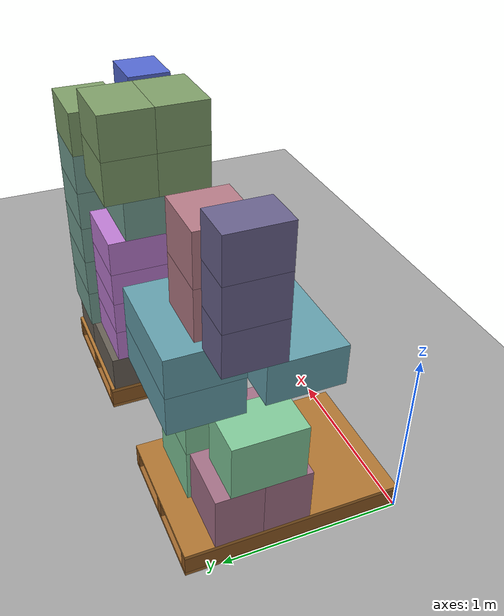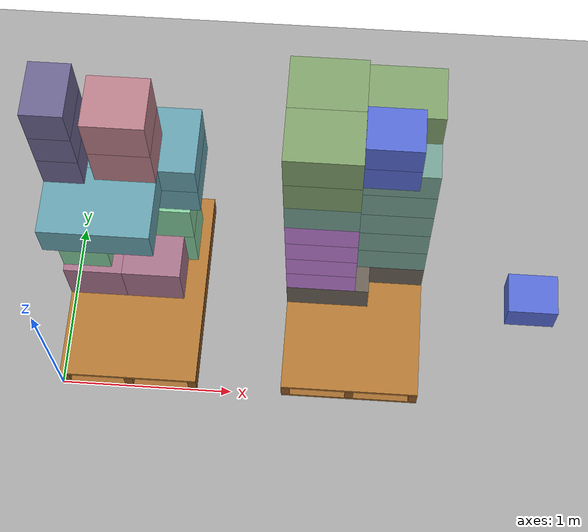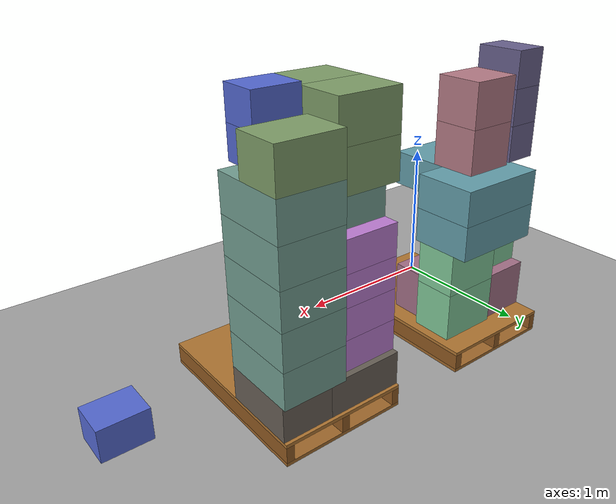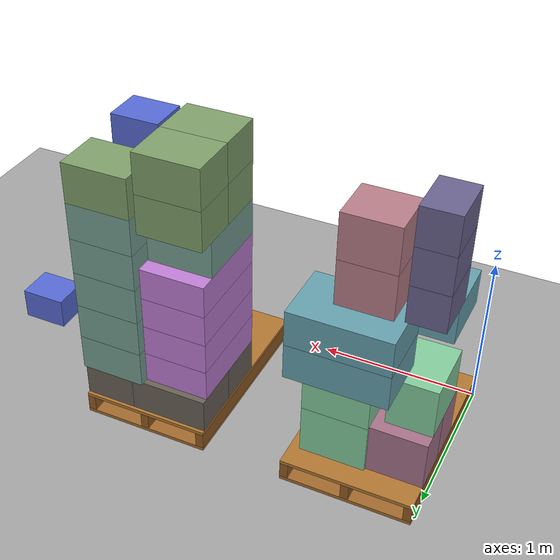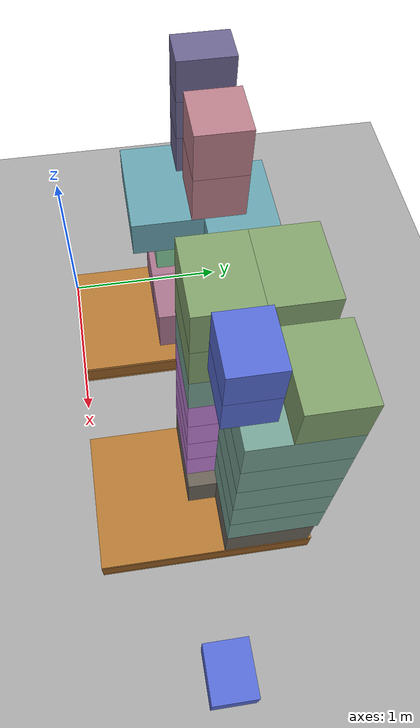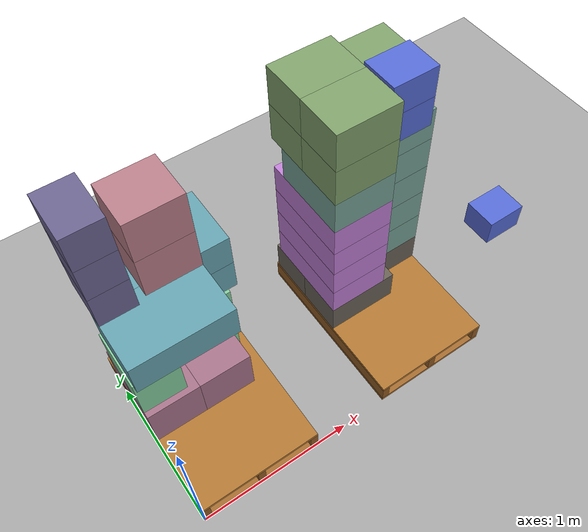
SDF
<sdf version="1.10">
 <world name="pallet_towers">
  <model name="ground_plane">
   <static>true</static>
   <link name="link">
    <collision name="collision">
     <geometry><plane><normal>0 0 1</normal><size>30 30</size></plane></geometry>
     <surface>
      <friction><ode><mu>0.55</mu><mu2>0.55</mu2></ode></friction>
      <bounce><restitution_coefficient>0</restitution_coefficient><threshold>100000</threshold></bounce>
      <contact><ode><kp>1000000</kp><kd>100</kd><max_vel>1</max_vel><min_depth>0.0005</min_depth></ode></contact>
     </surface>
    </collision>
    <visual name="visual">
     <geometry><plane><normal>0 0 1</normal><size>30 30</size></plane></geometry>
     <material><ambient>0.65 0.65 0.65 1</ambient><diffuse>0.65 0.65 0.65 1</diffuse></material>
    </visual>
   </link>
  </model>
  <model name="pallet_01_P01">
   <static>false</static>
   <pose>0.4 0.6 0.002 0 0 0</pose>
   <allow_auto_disable>false</allow_auto_disable>
   <link name="body">
    <inertial>
     <pose>0 0 0.072 0 0 0</pose>
     <mass>25</mass>
     <inertia>
      <ixx>3.07216082</ixx>
      <ixy>0</ixy>
      <ixz>0</ixz>
      <iyy>1.70896776</iyy>
      <iyz>0</iyz>
      <izz>4.63680694</izz>
     </inertia>
    </inertial>
    <collision name="bottom_deck_collision">
     <pose>0 0 0.011 0 0 0</pose>
     <geometry><box><size>0.8 1.2 0.022</size></box></geometry>
     <surface>
      <friction><ode><mu>0.55</mu><mu2>0.55</mu2></ode></friction>
      <bounce><restitution_coefficient>0</restitution_coefficient><threshold>100000</threshold></bounce>
      <contact><ode><kp>1000000</kp><kd>100</kd><max_vel>1</max_vel><min_depth>0.0005</min_depth></ode></contact>
     </surface>
    </collision>
    <visual name="bottom_deck_visual">
     <pose>0 0 0.011 0 0 0</pose>
     <geometry><box><size>0.8 1.2 0.022</size></box></geometry>
     <material>
      <ambient>0.46 0.28 0.10 1</ambient>
      <diffuse>0.64 0.42 0.18 1</diffuse>
      <specular>0.03 0.03 0.03 1</specular>
     </material>
    </visual>
    <collision name="left_stringer_collision">
     <pose>-0.375 0 0.072 0 0 0</pose>
     <geometry><box><size>0.05 1.2 0.1</size></box></geometry>
     <surface>
      <friction><ode><mu>0.55</mu><mu2>0.55</mu2></ode></friction>
      <bounce><restitution_coefficient>0</restitution_coefficient><threshold>100000</threshold></bounce>
      <contact><ode><kp>1000000</kp><kd>100</kd><max_vel>1</max_vel><min_depth>0.0005</min_depth></ode></contact>
     </surface>
    </collision>
    <visual name="left_stringer_visual">
     <pose>-0.375 0 0.072 0 0 0</pose>
     <geometry><box><size>0.05 1.2 0.1</size></box></geometry>
     <material>
      <ambient>0.42 0.25 0.09 1</ambient>
      <diffuse>0.58 0.36 0.14 1</diffuse>
      <specular>0.03 0.03 0.03 1</specular>
     </material>
    </visual>
    <collision name="centre_stringer_collision">
     <pose>0 0 0.072 0 0 0</pose>
     <geometry><box><size>0.05 1.2 0.1</size></box></geometry>
     <surface>
      <friction><ode><mu>0.55</mu><mu2>0.55</mu2></ode></friction>
      <bounce><restitution_coefficient>0</restitution_coefficient><threshold>100000</threshold></bounce>
      <contact><ode><kp>1000000</kp><kd>100</kd><max_vel>1</max_vel><min_depth>0.0005</min_depth></ode></contact>
     </surface>
    </collision>
    <visual name="centre_stringer_visual">
     <pose>0 0 0.072 0 0 0</pose>
     <geometry><box><size>0.05 1.2 0.1</size></box></geometry>
     <material>
      <ambient>0.42 0.25 0.09 1</ambient>
      <diffuse>0.58 0.36 0.14 1</diffuse>
      <specular>0.03 0.03 0.03 1</specular>
     </material>
    </visual>
    <collision name="right_stringer_collision">
     <pose>0.375 0 0.072 0 0 0</pose>
     <geometry><box><size>0.05 1.2 0.1</size></box></geometry>
     <surface>
      <friction><ode><mu>0.55</mu><mu2>0.55</mu2></ode></friction>
      <bounce><restitution_coefficient>0</restitution_coefficient><threshold>100000</threshold></bounce>
      <contact><ode><kp>1000000</kp><kd>100</kd><max_vel>1</max_vel><min_depth>0.0005</min_depth></ode></contact>
     </surface>
    </collision>
    <visual name="right_stringer_visual">
     <pose>0.375 0 0.072 0 0 0</pose>
     <geometry><box><size>0.05 1.2 0.1</size></box></geometry>
     <material>
      <ambient>0.42 0.25 0.09 1</ambient>
      <diffuse>0.58 0.36 0.14 1</diffuse>
      <specular>0.03 0.03 0.03 1</specular>
     </material>
    </visual>
    <collision name="top_deck_collision">
     <pose>0 0 0.133 0 0 0</pose>
     <geometry><box><size>0.8 1.2 0.022</size></box></geometry>
     <surface>
      <friction><ode><mu>0.55</mu><mu2>0.55</mu2></ode></friction>
      <bounce><restitution_coefficient>0</restitution_coefficient><threshold>100000</threshold></bounce>
      <contact><ode><kp>1000000</kp><kd>100</kd><max_vel>1</max_vel><min_depth>0.0005</min_depth></ode></contact>
     </surface>
    </collision>
    <visual name="top_deck_visual">
     <pose>0 0 0.133 0 0 0</pose>
     <geometry><box><size>0.8 1.2 0.022</size></box></geometry>
     <material>
      <ambient>0.50 0.31 0.11 1</ambient>
      <diffuse>0.70 0.47 0.20 1</diffuse>
      <specular>0.03 0.03 0.03 1</specular>
     </material>
    </visual>
   </link>
  </model>
  <model name="box_p01_0005_WINE_005_WINE">
   <static>false</static>
   <pose>0.17 0.65 0.306 0 0 0</pose>
   <link name="body">
    <inertial>
     <mass>18</mass>
     <inertia><ixx>0.255</ixx><ixy>0</ixy><ixz>0</ixz><iyy>0.327</iyy><iyz>0</iyz><izz>0.2748</izz></inertia>
    </inertial>
    <collision name="collision">
     <geometry><box><size>0.34 0.26 0.32</size></box></geometry>
     <surface>
      <friction><ode><mu>0.55</mu><mu2>0.55</mu2></ode></friction>
      <bounce><restitution_coefficient>0</restitution_coefficient><threshold>100000</threshold></bounce>
      <contact><ode><kp>1000000</kp><kd>100</kd><max_vel>1</max_vel><min_depth>0.0005</min_depth></ode></contact>
     </surface>
    </collision>
    <visual name="visual">
     <geometry><box><size>0.34 0.26 0.32</size></box></geometry>
     <material>
      <ambient>0.654901961 0.450980392 0.541176471 1</ambient>
      <diffuse>0.654901961 0.450980392 0.541176471 1</diffuse>
      <specular>0.05 0.05 0.05 1</specular>
     </material>
    </visual>
   </link>
  </model>
  <model name="box_p01_0006_WINE_006_WINE">
   <static>false</static>
   <pose>0.51 0.65 0.306 0 0 0</pose>
   <link name="body">
    <inertial>
     <mass>18</mass>
     <inertia><ixx>0.255</ixx><ixy>0</ixy><ixz>0</ixz><iyy>0.327</iyy><iyz>0</iyz><izz>0.2748</izz></inertia>
    </inertial>
    <collision name="collision">
     <geometry><box><size>0.34 0.26 0.32</size></box></geometry>
     <surface>
      <friction><ode><mu>0.55</mu><mu2>0.55</mu2></ode></friction>
      <bounce><restitution_coefficient>0</restitution_coefficient><threshold>100000</threshold></bounce>
      <contact><ode><kp>1000000</kp><kd>100</kd><max_vel>1</max_vel><min_depth>0.0005</min_depth></ode></contact>
     </surface>
    </collision>
    <visual name="visual">
     <geometry><box><size>0.34 0.26 0.32</size></box></geometry>
     <material>
      <ambient>0.654901961 0.450980392 0.541176471 1</ambient>
      <diffuse>0.654901961 0.450980392 0.541176471 1</diffuse>
      <specular>0.05 0.05 0.05 1</specular>
     </material>
    </visual>
   </link>
  </model>
  <model name="box_p01_0007_WINE_007_WINE">
   <static>false</static>
   <pose>0.17 0.91 0.306 0 0 0</pose>
   <link name="body">
    <inertial>
     <mass>18</mass>
     <inertia><ixx>0.255</ixx><ixy>0</ixy><ixz>0</ixz><iyy>0.327</iyy><iyz>0</iyz><izz>0.2748</izz></inertia>
    </inertial>
    <collision name="collision">
     <geometry><box><size>0.34 0.26 0.32</size></box></geometry>
     <surface>
      <friction><ode><mu>0.55</mu><mu2>0.55</mu2></ode></friction>
      <bounce><restitution_coefficient>0</restitution_coefficient><threshold>100000</threshold></bounce>
      <contact><ode><kp>1000000</kp><kd>100</kd><max_vel>1</max_vel><min_depth>0.0005</min_depth></ode></contact>
     </surface>
    </collision>
    <visual name="visual">
     <geometry><box><size>0.34 0.26 0.32</size></box></geometry>
     <material>
      <ambient>0.654901961 0.450980392 0.541176471 1</ambient>
      <diffuse>0.654901961 0.450980392 0.541176471 1</diffuse>
      <specular>0.05 0.05 0.05 1</specular>
     </material>
    </visual>
   </link>
  </model>
  <model name="box_p01_0008_DETERG_001_DETERG">
   <static>false</static>
   <pose>0.54 0.92 0.306 0 0 0</pose>
   <link name="body">
    <inertial>
     <mass>7</mass>
     <inertia>
      <ixx>0.105466667</ixx>
      <ixy>0</ixy>
      <ixz>0</ixz>
      <iyy>0.153066667</iyy>
      <iyz>0</iyz>
      <izz>0.139066667</izz>
     </inertia>
    </inertial>
    <collision name="collision">
     <geometry><box><size>0.4 0.28 0.32</size></box></geometry>
     <surface>
      <friction><ode><mu>0.55</mu><mu2>0.55</mu2></ode></friction>
      <bounce><restitution_coefficient>0</restitution_coefficient><threshold>100000</threshold></bounce>
      <contact><ode><kp>1000000</kp><kd>100</kd><max_vel>1</max_vel><min_depth>0.0005</min_depth></ode></contact>
     </surface>
    </collision>
    <visual name="visual">
     <geometry><box><size>0.4 0.28 0.32</size></box></geometry>
     <material>
      <ambient>0.517647059 0.803921569 0.615686275 1</ambient>
      <diffuse>0.517647059 0.803921569 0.615686275 1</diffuse>
      <specular>0.05 0.05 0.05 1</specular>
     </material>
    </visual>
   </link>
  </model>
  <model name="box_p01_0009_DETERG_002_DETERG">
   <static>false</static>
   <pose>0.54 0.92 0.626 0 0 0</pose>
   <link name="body">
    <inertial>
     <mass>7</mass>
     <inertia>
      <ixx>0.105466667</ixx>
      <ixy>0</ixy>
      <ixz>0</ixz>
      <iyy>0.153066667</iyy>
      <iyz>0</iyz>
      <izz>0.139066667</izz>
     </inertia>
    </inertial>
    <collision name="collision">
     <geometry><box><size>0.4 0.28 0.32</size></box></geometry>
     <surface>
      <friction><ode><mu>0.55</mu><mu2>0.55</mu2></ode></friction>
      <bounce><restitution_coefficient>0</restitution_coefficient><threshold>100000</threshold></bounce>
      <contact><ode><kp>1000000</kp><kd>100</kd><max_vel>1</max_vel><min_depth>0.0005</min_depth></ode></contact>
     </surface>
    </collision>
    <visual name="visual">
     <geometry><box><size>0.4 0.28 0.32</size></box></geometry>
     <material>
      <ambient>0.517647059 0.803921569 0.615686275 1</ambient>
      <diffuse>0.517647059 0.803921569 0.615686275 1</diffuse>
      <specular>0.05 0.05 0.05 1</specular>
     </material>
    </visual>
   </link>
  </model>
  <model name="box_p01_0013_DETERG_006_DETERG">
   <static>false</static>
   <pose>0.14 0.76 0.626 0 0 0</pose>
   <link name="body">
    <inertial>
     <mass>7</mass>
     <inertia>
      <ixx>0.153066667</ixx>
      <ixy>0</ixy>
      <ixz>0</ixz>
      <iyy>0.105466667</iyy>
      <iyz>0</iyz>
      <izz>0.139066667</izz>
     </inertia>
    </inertial>
    <collision name="collision">
     <geometry><box><size>0.28 0.4 0.32</size></box></geometry>
     <surface>
      <friction><ode><mu>0.55</mu><mu2>0.55</mu2></ode></friction>
      <bounce><restitution_coefficient>0</restitution_coefficient><threshold>100000</threshold></bounce>
      <contact><ode><kp>1000000</kp><kd>100</kd><max_vel>1</max_vel><min_depth>0.0005</min_depth></ode></contact>
     </surface>
    </collision>
    <visual name="visual">
     <geometry><box><size>0.28 0.4 0.32</size></box></geometry>
     <material>
      <ambient>0.517647059 0.803921569 0.615686275 1</ambient>
      <diffuse>0.517647059 0.803921569 0.615686275 1</diffuse>
      <specular>0.05 0.05 0.05 1</specular>
     </material>
    </visual>
   </link>
  </model>
  <model name="box_p01_0018_APPLES_004_APPLES">
   <static>false</static>
   <pose>0.3 0.6 1.116 0 0 0</pose>
   <link name="body">
    <inertial>
     <mass>12</mass>
     <inertia><ixx>0.2084</ixx><ixy>0</ixy><ixz>0</ixz><iyy>0.4084</iyy><iyz>0</iyz><izz>0.52</izz></inertia>
    </inertial>
    <collision name="collision">
     <geometry><box><size>0.6 0.4 0.22</size></box></geometry>
     <surface>
      <friction><ode><mu>0.55</mu><mu2>0.55</mu2></ode></friction>
      <bounce><restitution_coefficient>0</restitution_coefficient><threshold>100000</threshold></bounce>
      <contact><ode><kp>1000000</kp><kd>100</kd><max_vel>1</max_vel><min_depth>0.0005</min_depth></ode></contact>
     </surface>
    </collision>
    <visual name="visual">
     <geometry><box><size>0.6 0.4 0.22</size></box></geometry>
     <material>
      <ambient>0.4 0.635294118 0.68627451 1</ambient>
      <diffuse>0.4 0.635294118 0.68627451 1</diffuse>
      <specular>0.05 0.05 0.05 1</specular>
     </material>
    </visual>
   </link>
  </model>
  <model name="box_p01_0019_APPLES_005_APPLES">
   <static>false</static>
   <pose>0.5 1 0.896 0 0 0</pose>
   <link name="body">
    <inertial>
     <mass>12</mass>
     <inertia><ixx>0.2084</ixx><ixy>0</ixy><ixz>0</ixz><iyy>0.4084</iyy><iyz>0</iyz><izz>0.52</izz></inertia>
    </inertial>
    <collision name="collision">
     <geometry><box><size>0.6 0.4 0.22</size></box></geometry>
     <surface>
      <friction><ode><mu>0.55</mu><mu2>0.55</mu2></ode></friction>
      <bounce><restitution_coefficient>0</restitution_coefficient><threshold>100000</threshold></bounce>
      <contact><ode><kp>1000000</kp><kd>100</kd><max_vel>1</max_vel><min_depth>0.0005</min_depth></ode></contact>
     </surface>
    </collision>
    <visual name="visual">
     <geometry><box><size>0.6 0.4 0.22</size></box></geometry>
     <material>
      <ambient>0.4 0.635294118 0.68627451 1</ambient>
      <diffuse>0.4 0.635294118 0.68627451 1</diffuse>
      <specular>0.05 0.05 0.05 1</specular>
     </material>
    </visual>
   </link>
  </model>
  <model name="box_p01_0020_APPLES_006_APPLES">
   <static>false</static>
   <pose>0.5 1 1.116 0 0 0</pose>
   <link name="body">
    <inertial>
     <mass>12</mass>
     <inertia><ixx>0.2084</ixx><ixy>0</ixy><ixz>0</ixz><iyy>0.4084</iyy><iyz>0</iyz><izz>0.52</izz></inertia>
    </inertial>
    <collision name="collision">
     <geometry><box><size>0.6 0.4 0.22</size></box></geometry>
     <surface>
      <friction><ode><mu>0.55</mu><mu2>0.55</mu2></ode></friction>
      <bounce><restitution_coefficient>0</restitution_coefficient><threshold>100000</threshold></bounce>
      <contact><ode><kp>1000000</kp><kd>100</kd><max_vel>1</max_vel><min_depth>0.0005</min_depth></ode></contact>
     </surface>
    </collision>
    <visual name="visual">
     <geometry><box><size>0.6 0.4 0.22</size></box></geometry>
     <material>
      <ambient>0.4 0.635294118 0.68627451 1</ambient>
      <diffuse>0.4 0.635294118 0.68627451 1</diffuse>
      <specular>0.05 0.05 0.05 1</specular>
     </material>
    </visual>
   </link>
  </model>
  <model name="box_p01_0024_EGGS_003_EGGS">
   <static>false</static>
   <pose>0.435 0.88 1.366 0 0 0</pose>
   <link name="body">
    <inertial>
     <mass>18</mass>
     <inertia><ixx>0.2526</ixx><ixy>0</ixy><ixz>0</ixz><iyy>0.28095</iyy><iyz>0</iyz><izz>0.29835</izz></inertia>
    </inertial>
    <collision name="collision">
     <geometry><box><size>0.33 0.3 0.28</size></box></geometry>
     <surface>
      <friction><ode><mu>0.55</mu><mu2>0.55</mu2></ode></friction>
      <bounce><restitution_coefficient>0</restitution_coefficient><threshold>100000</threshold></bounce>
      <contact><ode><kp>1000000</kp><kd>100</kd><max_vel>1</max_vel><min_depth>0.0005</min_depth></ode></contact>
     </surface>
    </collision>
    <visual name="visual">
     <geometry><box><size>0.33 0.3 0.28</size></box></geometry>
     <material>
      <ambient>0.725490196 0.494117647 0.537254902 1</ambient>
      <diffuse>0.725490196 0.494117647 0.537254902 1</diffuse>
      <specular>0.05 0.05 0.05 1</specular>
     </material>
    </visual>
   </link>
  </model>
  <model name="box_p01_0027_EGGS_006_EGGS">
   <static>false</static>
   <pose>0.435 0.88 1.646 0 0 0</pose>
   <link name="body">
    <inertial>
     <mass>18</mass>
     <inertia><ixx>0.2526</ixx><ixy>0</ixy><ixz>0</ixz><iyy>0.28095</iyy><iyz>0</iyz><izz>0.29835</izz></inertia>
    </inertial>
    <collision name="collision">
     <geometry><box><size>0.33 0.3 0.28</size></box></geometry>
     <surface>
      <friction><ode><mu>0.55</mu><mu2>0.55</mu2></ode></friction>
      <bounce><restitution_coefficient>0</restitution_coefficient><threshold>100000</threshold></bounce>
      <contact><ode><kp>1000000</kp><kd>100</kd><max_vel>1</max_vel><min_depth>0.0005</min_depth></ode></contact>
     </surface>
    </collision>
    <visual name="visual">
     <geometry><box><size>0.33 0.3 0.28</size></box></geometry>
     <material>
      <ambient>0.725490196 0.494117647 0.537254902 1</ambient>
      <diffuse>0.725490196 0.494117647 0.537254902 1</diffuse>
      <specular>0.05 0.05 0.05 1</specular>
     </material>
    </visual>
   </link>
  </model>
  <model name="box_p01_0029_SUGAR_001_SUGAR">
   <static>false</static>
   <pose>0.11 0.855 1.341 0 0 0</pose>
   <link name="body">
    <inertial>
     <mass>10</mass>
     <inertia>
      <ixx>0.124166667</ixx>
      <ixy>0</ixy>
      <ixz>0</ixz>
      <iyy>0.0844166667</iyy>
      <iyz>0</iyz>
      <izz>0.120416667</izz>
     </inertia>
    </inertial>
    <collision name="collision">
     <geometry><box><size>0.22 0.31 0.23</size></box></geometry>
     <surface>
      <friction><ode><mu>0.55</mu><mu2>0.55</mu2></ode></friction>
      <bounce><restitution_coefficient>0</restitution_coefficient><threshold>100000</threshold></bounce>
      <contact><ode><kp>1000000</kp><kd>100</kd><max_vel>1</max_vel><min_depth>0.0005</min_depth></ode></contact>
     </surface>
    </collision>
    <visual name="visual">
     <geometry><box><size>0.22 0.31 0.23</size></box></geometry>
     <material>
      <ambient>0.419607843 0.392156863 0.564705882 1</ambient>
      <diffuse>0.419607843 0.392156863 0.564705882 1</diffuse>
      <specular>0.05 0.05 0.05 1</specular>
     </material>
    </visual>
   </link>
  </model>
  <model name="box_p01_0030_SUGAR_002_SUGAR">
   <static>false</static>
   <pose>0.11 0.855 1.571 0 0 0</pose>
   <link name="body">
    <inertial>
     <mass>10</mass>
     <inertia>
      <ixx>0.124166667</ixx>
      <ixy>0</ixy>
      <ixz>0</ixz>
      <iyy>0.0844166667</iyy>
      <iyz>0</iyz>
      <izz>0.120416667</izz>
     </inertia>
    </inertial>
    <collision name="collision">
     <geometry><box><size>0.22 0.31 0.23</size></box></geometry>
     <surface>
      <friction><ode><mu>0.55</mu><mu2>0.55</mu2></ode></friction>
      <bounce><restitution_coefficient>0</restitution_coefficient><threshold>100000</threshold></bounce>
      <contact><ode><kp>1000000</kp><kd>100</kd><max_vel>1</max_vel><min_depth>0.0005</min_depth></ode></contact>
     </surface>
    </collision>
    <visual name="visual">
     <geometry><box><size>0.22 0.31 0.23</size></box></geometry>
     <material>
      <ambient>0.419607843 0.392156863 0.564705882 1</ambient>
      <diffuse>0.419607843 0.392156863 0.564705882 1</diffuse>
      <specular>0.05 0.05 0.05 1</specular>
     </material>
    </visual>
   </link>
  </model>
  <model name="box_p01_0033_SUGAR_005_SUGAR">
   <static>false</static>
   <pose>0.11 0.855 1.801 0 0 0</pose>
   <link name="body">
    <inertial>
     <mass>10</mass>
     <inertia>
      <ixx>0.124166667</ixx>
      <ixy>0</ixy>
      <ixz>0</ixz>
      <iyy>0.0844166667</iyy>
      <iyz>0</iyz>
      <izz>0.120416667</izz>
     </inertia>
    </inertial>
    <collision name="collision">
     <geometry><box><size>0.22 0.31 0.23</size></box></geometry>
     <surface>
      <friction><ode><mu>0.55</mu><mu2>0.55</mu2></ode></friction>
      <bounce><restitution_coefficient>0</restitution_coefficient><threshold>100000</threshold></bounce>
      <contact><ode><kp>1000000</kp><kd>100</kd><max_vel>1</max_vel><min_depth>0.0005</min_depth></ode></contact>
     </surface>
    </collision>
    <visual name="visual">
     <geometry><box><size>0.22 0.31 0.23</size></box></geometry>
     <material>
      <ambient>0.419607843 0.392156863 0.564705882 1</ambient>
      <diffuse>0.419607843 0.392156863 0.564705882 1</diffuse>
      <specular>0.05 0.05 0.05 1</specular>
     </material>
    </visual>
   </link>
  </model>
  <model name="pallet_02_P02">
   <static>false</static>
   <pose>1.7 0.6 0.002 0 0 0</pose>
   <allow_auto_disable>false</allow_auto_disable>
   <link name="body">
    <inertial>
     <pose>0 0 0.072 0 0 0</pose>
     <mass>25</mass>
     <inertia>
      <ixx>3.07216082</ixx>
      <ixy>0</ixy>
      <ixz>0</ixz>
      <iyy>1.70896776</iyy>
      <iyz>0</iyz>
      <izz>4.63680694</izz>
     </inertia>
    </inertial>
    <collision name="bottom_deck_collision">
     <pose>0 0 0.011 0 0 0</pose>
     <geometry><box><size>0.8 1.2 0.022</size></box></geometry>
     <surface>
      <friction><ode><mu>0.55</mu><mu2>0.55</mu2></ode></friction>
      <bounce><restitution_coefficient>0</restitution_coefficient><threshold>100000</threshold></bounce>
      <contact><ode><kp>1000000</kp><kd>100</kd><max_vel>1</max_vel><min_depth>0.0005</min_depth></ode></contact>
     </surface>
    </collision>
    <visual name="bottom_deck_visual">
     <pose>0 0 0.011 0 0 0</pose>
     <geometry><box><size>0.8 1.2 0.022</size></box></geometry>
     <material>
      <ambient>0.46 0.28 0.10 1</ambient>
      <diffuse>0.64 0.42 0.18 1</diffuse>
      <specular>0.03 0.03 0.03 1</specular>
     </material>
    </visual>
    <collision name="left_stringer_collision">
     <pose>-0.375 0 0.072 0 0 0</pose>
     <geometry><box><size>0.05 1.2 0.1</size></box></geometry>
     <surface>
      <friction><ode><mu>0.55</mu><mu2>0.55</mu2></ode></friction>
      <bounce><restitution_coefficient>0</restitution_coefficient><threshold>100000</threshold></bounce>
      <contact><ode><kp>1000000</kp><kd>100</kd><max_vel>1</max_vel><min_depth>0.0005</min_depth></ode></contact>
     </surface>
    </collision>
    <visual name="left_stringer_visual">
     <pose>-0.375 0 0.072 0 0 0</pose>
     <geometry><box><size>0.05 1.2 0.1</size></box></geometry>
     <material>
      <ambient>0.42 0.25 0.09 1</ambient>
      <diffuse>0.58 0.36 0.14 1</diffuse>
      <specular>0.03 0.03 0.03 1</specular>
     </material>
    </visual>
    <collision name="centre_stringer_collision">
     <pose>0 0 0.072 0 0 0</pose>
     <geometry><box><size>0.05 1.2 0.1</size></box></geometry>
     <surface>
      <friction><ode><mu>0.55</mu><mu2>0.55</mu2></ode></friction>
      <bounce><restitution_coefficient>0</restitution_coefficient><threshold>100000</threshold></bounce>
      <contact><ode><kp>1000000</kp><kd>100</kd><max_vel>1</max_vel><min_depth>0.0005</min_depth></ode></contact>
     </surface>
    </collision>
    <visual name="centre_stringer_visual">
     <pose>0 0 0.072 0 0 0</pose>
     <geometry><box><size>0.05 1.2 0.1</size></box></geometry>
     <material>
      <ambient>0.42 0.25 0.09 1</ambient>
      <diffuse>0.58 0.36 0.14 1</diffuse>
      <specular>0.03 0.03 0.03 1</specular>
     </material>
    </visual>
    <collision name="right_stringer_collision">
     <pose>0.375 0 0.072 0 0 0</pose>
     <geometry><box><size>0.05 1.2 0.1</size></box></geometry>
     <surface>
      <friction><ode><mu>0.55</mu><mu2>0.55</mu2></ode></friction>
      <bounce><restitution_coefficient>0</restitution_coefficient><threshold>100000</threshold></bounce>
      <contact><ode><kp>1000000</kp><kd>100</kd><max_vel>1</max_vel><min_depth>0.0005</min_depth></ode></contact>
     </surface>
    </collision>
    <visual name="right_stringer_visual">
     <pose>0.375 0 0.072 0 0 0</pose>
     <geometry><box><size>0.05 1.2 0.1</size></box></geometry>
     <material>
      <ambient>0.42 0.25 0.09 1</ambient>
      <diffuse>0.58 0.36 0.14 1</diffuse>
      <specular>0.03 0.03 0.03 1</specular>
     </material>
    </visual>
    <collision name="top_deck_collision">
     <pose>0 0 0.133 0 0 0</pose>
     <geometry><box><size>0.8 1.2 0.022</size></box></geometry>
     <surface>
      <friction><ode><mu>0.55</mu><mu2>0.55</mu2></ode></friction>
      <bounce><restitution_coefficient>0</restitution_coefficient><threshold>100000</threshold></bounce>
      <contact><ode><kp>1000000</kp><kd>100</kd><max_vel>1</max_vel><min_depth>0.0005</min_depth></ode></contact>
     </surface>
    </collision>
    <visual name="top_deck_visual">
     <pose>0 0 0.133 0 0 0</pose>
     <geometry><box><size>0.8 1.2 0.022</size></box></geometry>
     <material>
      <ambient>0.50 0.31 0.11 1</ambient>
      <diffuse>0.70 0.47 0.20 1</diffuse>
      <specular>0.03 0.03 0.03 1</specular>
     </material>
    </visual>
   </link>
  </model>
  <model name="box_p02_0005_FLOUR_003_FLOUR">
   <static>false</static>
   <pose>1.54 0.7 0.256 0 0 0</pose>
   <link name="body">
    <inertial>
     <mass>15</mass>
     <inertia><ixx>0.1885</ixx><ixy>0</ixy><ixz>0</ixz><iyy>0.3485</iyy><iyz>0</iyz><izz>0.416</izz></inertia>
    </inertial>
    <collision name="collision">
     <geometry><box><size>0.48 0.32 0.22</size></box></geometry>
     <surface>
      <friction><ode><mu>0.55</mu><mu2>0.55</mu2></ode></friction>
      <bounce><restitution_coefficient>0</restitution_coefficient><threshold>100000</threshold></bounce>
      <contact><ode><kp>1000000</kp><kd>100</kd><max_vel>1</max_vel><min_depth>0.0005</min_depth></ode></contact>
     </surface>
    </collision>
    <visual name="visual">
     <geometry><box><size>0.48 0.32 0.22</size></box></geometry>
     <material>
      <ambient>0.411764706 0.380392157 0.341176471 1</ambient>
      <diffuse>0.411764706 0.380392157 0.341176471 1</diffuse>
      <specular>0.05 0.05 0.05 1</specular>
     </material>
    </visual>
   </link>
  </model>
  <model name="box_p02_0006_FLOUR_004_FLOUR">
   <static>false</static>
   <pose>1.94 0.94 0.256 0 0 0</pose>
   <link name="body">
    <inertial>
     <mass>15</mass>
     <inertia><ixx>0.3485</ixx><ixy>0</ixy><ixz>0</ixz><iyy>0.1885</iyy><iyz>0</iyz><izz>0.416</izz></inertia>
    </inertial>
    <collision name="collision">
     <geometry><box><size>0.32 0.48 0.22</size></box></geometry>
     <surface>
      <friction><ode><mu>0.55</mu><mu2>0.55</mu2></ode></friction>
      <bounce><restitution_coefficient>0</restitution_coefficient><threshold>100000</threshold></bounce>
      <contact><ode><kp>1000000</kp><kd>100</kd><max_vel>1</max_vel><min_depth>0.0005</min_depth></ode></contact>
     </surface>
    </collision>
    <visual name="visual">
     <geometry><box><size>0.32 0.48 0.22</size></box></geometry>
     <material>
      <ambient>0.411764706 0.380392157 0.341176471 1</ambient>
      <diffuse>0.411764706 0.380392157 0.341176471 1</diffuse>
      <specular>0.05 0.05 0.05 1</specular>
     </material>
    </visual>
   </link>
  </model>
  <model name="box_p02_0007_FLOUR_005_FLOUR">
   <static>false</static>
   <pose>1.54 1.02 0.256 0 0 0</pose>
   <link name="body">
    <inertial>
     <mass>15</mass>
     <inertia><ixx>0.1885</ixx><ixy>0</ixy><ixz>0</ixz><iyy>0.3485</iyy><iyz>0</iyz><izz>0.416</izz></inertia>
    </inertial>
    <collision name="collision">
     <geometry><box><size>0.48 0.32 0.22</size></box></geometry>
     <surface>
      <friction><ode><mu>0.55</mu><mu2>0.55</mu2></ode></friction>
      <bounce><restitution_coefficient>0</restitution_coefficient><threshold>100000</threshold></bounce>
      <contact><ode><kp>1000000</kp><kd>100</kd><max_vel>1</max_vel><min_depth>0.0005</min_depth></ode></contact>
     </surface>
    </collision>
    <visual name="visual">
     <geometry><box><size>0.48 0.32 0.22</size></box></geometry>
     <material>
      <ambient>0.411764706 0.380392157 0.341176471 1</ambient>
      <diffuse>0.411764706 0.380392157 0.341176471 1</diffuse>
      <specular>0.05 0.05 0.05 1</specular>
     </material>
    </visual>
   </link>
  </model>
  <model name="box_p02_0010_BREAD_001_BREAD">
   <static>false</static>
   <pose>1.5 0.84 0.466 0 0 0</pose>
   <link name="body">
    <inertial>
     <mass>4.5</mass>
     <inertia><ixx>0.15</ixx><ixy>0</ixy><ixz>0</ixz><iyy>0.075</iyy><iyz>0</iyz><izz>0.195</izz></inertia>
    </inertial>
    <collision name="collision">
     <geometry><box><size>0.4 0.6 0.2</size></box></geometry>
     <surface>
      <friction><ode><mu>0.55</mu><mu2>0.55</mu2></ode></friction>
      <bounce><restitution_coefficient>0</restitution_coefficient><threshold>100000</threshold></bounce>
      <contact><ode><kp>1000000</kp><kd>100</kd><max_vel>1</max_vel><min_depth>0.0005</min_depth></ode></contact>
     </surface>
    </collision>
    <visual name="visual">
     <geometry><box><size>0.4 0.6 0.2</size></box></geometry>
     <material>
      <ambient>0.756862745 0.498039216 0.839215686 1</ambient>
      <diffuse>0.756862745 0.498039216 0.839215686 1</diffuse>
      <specular>0.05 0.05 0.05 1</specular>
     </material>
    </visual>
   </link>
  </model>
  <model name="box_p02_0011_BREAD_002_BREAD">
   <static>false</static>
   <pose>1.5 0.84 0.666 0 0 0</pose>
   <link name="body">
    <inertial>
     <mass>4.5</mass>
     <inertia><ixx>0.15</ixx><ixy>0</ixy><ixz>0</ixz><iyy>0.075</iyy><iyz>0</iyz><izz>0.195</izz></inertia>
    </inertial>
    <collision name="collision">
     <geometry><box><size>0.4 0.6 0.2</size></box></geometry>
     <surface>
      <friction><ode><mu>0.55</mu><mu2>0.55</mu2></ode></friction>
      <bounce><restitution_coefficient>0</restitution_coefficient><threshold>100000</threshold></bounce>
      <contact><ode><kp>1000000</kp><kd>100</kd><max_vel>1</max_vel><min_depth>0.0005</min_depth></ode></contact>
     </surface>
    </collision>
    <visual name="visual">
     <geometry><box><size>0.4 0.6 0.2</size></box></geometry>
     <material>
      <ambient>0.756862745 0.498039216 0.839215686 1</ambient>
      <diffuse>0.756862745 0.498039216 0.839215686 1</diffuse>
      <specular>0.05 0.05 0.05 1</specular>
     </material>
    </visual>
   </link>
  </model>
  <model name="box_p02_0013_BREAD_004_BREAD">
   <static>false</static>
   <pose>1.5 0.84 0.866 0 0 0</pose>
   <link name="body">
    <inertial>
     <mass>4.5</mass>
     <inertia><ixx>0.15</ixx><ixy>0</ixy><ixz>0</ixz><iyy>0.075</iyy><iyz>0</iyz><izz>0.195</izz></inertia>
    </inertial>
    <collision name="collision">
     <geometry><box><size>0.4 0.6 0.2</size></box></geometry>
     <surface>
      <friction><ode><mu>0.55</mu><mu2>0.55</mu2></ode></friction>
      <bounce><restitution_coefficient>0</restitution_coefficient><threshold>100000</threshold></bounce>
      <contact><ode><kp>1000000</kp><kd>100</kd><max_vel>1</max_vel><min_depth>0.0005</min_depth></ode></contact>
     </surface>
    </collision>
    <visual name="visual">
     <geometry><box><size>0.4 0.6 0.2</size></box></geometry>
     <material>
      <ambient>0.756862745 0.498039216 0.839215686 1</ambient>
      <diffuse>0.756862745 0.498039216 0.839215686 1</diffuse>
      <specular>0.05 0.05 0.05 1</specular>
     </material>
    </visual>
   </link>
  </model>
  <model name="box_p02_0015_BREAD_006_BREAD">
   <static>false</static>
   <pose>1.5 0.84 1.066 0 0 0</pose>
   <link name="body">
    <inertial>
     <mass>4.5</mass>
     <inertia><ixx>0.15</ixx><ixy>0</ixy><ixz>0</ixz><iyy>0.075</iyy><iyz>0</iyz><izz>0.195</izz></inertia>
    </inertial>
    <collision name="collision">
     <geometry><box><size>0.4 0.6 0.2</size></box></geometry>
     <surface>
      <friction><ode><mu>0.55</mu><mu2>0.55</mu2></ode></friction>
      <bounce><restitution_coefficient>0</restitution_coefficient><threshold>100000</threshold></bounce>
      <contact><ode><kp>1000000</kp><kd>100</kd><max_vel>1</max_vel><min_depth>0.0005</min_depth></ode></contact>
     </surface>
    </collision>
    <visual name="visual">
     <geometry><box><size>0.4 0.6 0.2</size></box></geometry>
     <material>
      <ambient>0.756862745 0.498039216 0.839215686 1</ambient>
      <diffuse>0.756862745 0.498039216 0.839215686 1</diffuse>
      <specular>0.05 0.05 0.05 1</specular>
     </material>
    </visual>
   </link>
  </model>
  <model name="box_p02_0017_BANANA_001_BANANA">
   <static>false</static>
   <pose>1.9 0.95 0.481 0 0 0</pose>
   <link name="body">
    <inertial>
     <mass>18</mass>
     <inertia><ixx>0.45435</ixx><ixy>0</ixy><ixz>0</ixz><iyy>0.31935</iyy><iyz>0</iyz><izz>0.615</izz></inertia>
    </inertial>
    <collision name="collision">
     <geometry><box><size>0.4 0.5 0.23</size></box></geometry>
     <surface>
      <friction><ode><mu>0.55</mu><mu2>0.55</mu2></ode></friction>
      <bounce><restitution_coefficient>0</restitution_coefficient><threshold>100000</threshold></bounce>
      <contact><ode><kp>1000000</kp><kd>100</kd><max_vel>1</max_vel><min_depth>0.0005</min_depth></ode></contact>
     </surface>
    </collision>
    <visual name="visual">
     <geometry><box><size>0.4 0.5 0.23</size></box></geometry>
     <material>
      <ambient>0.462745098 0.635294118 0.584313725 1</ambient>
      <diffuse>0.462745098 0.635294118 0.584313725 1</diffuse>
      <specular>0.05 0.05 0.05 1</specular>
     </material>
    </visual>
   </link>
  </model>
  <model name="box_p02_0018_BANANA_002_BANANA">
   <static>false</static>
   <pose>1.9 0.95 0.711 0 0 0</pose>
   <link name="body">
    <inertial>
     <mass>18</mass>
     <inertia><ixx>0.45435</ixx><ixy>0</ixy><ixz>0</ixz><iyy>0.31935</iyy><iyz>0</iyz><izz>0.615</izz></inertia>
    </inertial>
    <collision name="collision">
     <geometry><box><size>0.4 0.5 0.23</size></box></geometry>
     <surface>
      <friction><ode><mu>0.55</mu><mu2>0.55</mu2></ode></friction>
      <bounce><restitution_coefficient>0</restitution_coefficient><threshold>100000</threshold></bounce>
      <contact><ode><kp>1000000</kp><kd>100</kd><max_vel>1</max_vel><min_depth>0.0005</min_depth></ode></contact>
     </surface>
    </collision>
    <visual name="visual">
     <geometry><box><size>0.4 0.5 0.23</size></box></geometry>
     <material>
      <ambient>0.462745098 0.635294118 0.584313725 1</ambient>
      <diffuse>0.462745098 0.635294118 0.584313725 1</diffuse>
      <specular>0.05 0.05 0.05 1</specular>
     </material>
    </visual>
   </link>
  </model>
  <model name="box_p02_0019_BANANA_003_BANANA">
   <static>false</static>
   <pose>1.9 0.95 0.941 0 0 0</pose>
   <link name="body">
    <inertial>
     <mass>18</mass>
     <inertia><ixx>0.45435</ixx><ixy>0</ixy><ixz>0</ixz><iyy>0.31935</iyy><iyz>0</iyz><izz>0.615</izz></inertia>
    </inertial>
    <collision name="collision">
     <geometry><box><size>0.4 0.5 0.23</size></box></geometry>
     <surface>
      <friction><ode><mu>0.55</mu><mu2>0.55</mu2></ode></friction>
      <bounce><restitution_coefficient>0</restitution_coefficient><threshold>100000</threshold></bounce>
      <contact><ode><kp>1000000</kp><kd>100</kd><max_vel>1</max_vel><min_depth>0.0005</min_depth></ode></contact>
     </surface>
    </collision>
    <visual name="visual">
     <geometry><box><size>0.4 0.5 0.23</size></box></geometry>
     <material>
      <ambient>0.462745098 0.635294118 0.584313725 1</ambient>
      <diffuse>0.462745098 0.635294118 0.584313725 1</diffuse>
      <specular>0.05 0.05 0.05 1</specular>
     </material>
    </visual>
   </link>
  </model>
  <model name="box_p02_0020_BANANA_004_BANANA">
   <static>false</static>
   <pose>1.9 0.95 1.171 0 0 0</pose>
   <link name="body">
    <inertial>
     <mass>18</mass>
     <inertia><ixx>0.45435</ixx><ixy>0</ixy><ixz>0</ixz><iyy>0.31935</iyy><iyz>0</iyz><izz>0.615</izz></inertia>
    </inertial>
    <collision name="collision">
     <geometry><box><size>0.4 0.5 0.23</size></box></geometry>
     <surface>
      <friction><ode><mu>0.55</mu><mu2>0.55</mu2></ode></friction>
      <bounce><restitution_coefficient>0</restitution_coefficient><threshold>100000</threshold></bounce>
      <contact><ode><kp>1000000</kp><kd>100</kd><max_vel>1</max_vel><min_depth>0.0005</min_depth></ode></contact>
     </surface>
    </collision>
    <visual name="visual">
     <geometry><box><size>0.4 0.5 0.23</size></box></geometry>
     <material>
      <ambient>0.462745098 0.635294118 0.584313725 1</ambient>
      <diffuse>0.462745098 0.635294118 0.584313725 1</diffuse>
      <specular>0.05 0.05 0.05 1</specular>
     </material>
    </visual>
   </link>
  </model>
  <model name="box_p02_0021_BANANA_005_BANANA">
   <static>false</static>
   <pose>1.5 0.79 1.281 0 0 0</pose>
   <link name="body">
    <inertial>
     <mass>18</mass>
     <inertia><ixx>0.45435</ixx><ixy>0</ixy><ixz>0</ixz><iyy>0.31935</iyy><iyz>0</iyz><izz>0.615</izz></inertia>
    </inertial>
    <collision name="collision">
     <geometry><box><size>0.4 0.5 0.23</size></box></geometry>
     <surface>
      <friction><ode><mu>0.55</mu><mu2>0.55</mu2></ode></friction>
      <bounce><restitution_coefficient>0</restitution_coefficient><threshold>100000</threshold></bounce>
      <contact><ode><kp>1000000</kp><kd>100</kd><max_vel>1</max_vel><min_depth>0.0005</min_depth></ode></contact>
     </surface>
    </collision>
    <visual name="visual">
     <geometry><box><size>0.4 0.5 0.23</size></box></geometry>
     <material>
      <ambient>0.462745098 0.635294118 0.584313725 1</ambient>
      <diffuse>0.462745098 0.635294118 0.584313725 1</diffuse>
      <specular>0.05 0.05 0.05 1</specular>
     </material>
    </visual>
   </link>
  </model>
  <model name="box_p02_0022_BANANA_006_BANANA">
   <static>false</static>
   <pose>1.9 0.95 1.401 0 0 0</pose>
   <link name="body">
    <inertial>
     <mass>18</mass>
     <inertia><ixx>0.45435</ixx><ixy>0</ixy><ixz>0</ixz><iyy>0.31935</iyy><iyz>0</iyz><izz>0.615</izz></inertia>
    </inertial>
    <collision name="collision">
     <geometry><box><size>0.4 0.5 0.23</size></box></geometry>
     <surface>
      <friction><ode><mu>0.55</mu><mu2>0.55</mu2></ode></friction>
      <bounce><restitution_coefficient>0</restitution_coefficient><threshold>100000</threshold></bounce>
      <contact><ode><kp>1000000</kp><kd>100</kd><max_vel>1</max_vel><min_depth>0.0005</min_depth></ode></contact>
     </surface>
    </collision>
    <visual name="visual">
     <geometry><box><size>0.4 0.5 0.23</size></box></geometry>
     <material>
      <ambient>0.462745098 0.635294118 0.584313725 1</ambient>
      <diffuse>0.462745098 0.635294118 0.584313725 1</diffuse>
      <specular>0.05 0.05 0.05 1</specular>
     </material>
    </visual>
   </link>
  </model>
  <model name="box_p02_0024_COFFEE_001_COFFEE">
   <static>false</static>
   <pose>1.5 0.69 1.521 0 0 0</pose>
   <link name="body">
    <inertial>
     <mass>13</mass>
     <inertia>
      <ixx>0.165208333</ixx>
      <ixy>0</ixy>
      <ixz>0</ixz>
      <iyy>0.241041667</iyy>
      <iyz>0</iyz>
      <izz>0.270833333</izz>
     </inertia>
    </inertial>
    <collision name="collision">
     <geometry><box><size>0.4 0.3 0.25</size></box></geometry>
     <surface>
      <friction><ode><mu>0.55</mu><mu2>0.55</mu2></ode></friction>
      <bounce><restitution_coefficient>0</restitution_coefficient><threshold>100000</threshold></bounce>
      <contact><ode><kp>1000000</kp><kd>100</kd><max_vel>1</max_vel><min_depth>0.0005</min_depth></ode></contact>
     </surface>
    </collision>
    <visual name="visual">
     <geometry><box><size>0.4 0.3 0.25</size></box></geometry>
     <material>
      <ambient>0.505882353 0.631372549 0.419607843 1</ambient>
      <diffuse>0.505882353 0.631372549 0.419607843 1</diffuse>
      <specular>0.05 0.05 0.05 1</specular>
     </material>
    </visual>
   </link>
  </model>
  <model name="box_p02_0026_COFFEE_003_COFFEE">
   <static>false</static>
   <pose>1.5 0.99 1.521 0 0 0</pose>
   <link name="body">
    <inertial>
     <mass>13</mass>
     <inertia>
      <ixx>0.165208333</ixx>
      <ixy>0</ixy>
      <ixz>0</ixz>
      <iyy>0.241041667</iyy>
      <iyz>0</iyz>
      <izz>0.270833333</izz>
     </inertia>
    </inertial>
    <collision name="collision">
     <geometry><box><size>0.4 0.3 0.25</size></box></geometry>
     <surface>
      <friction><ode><mu>0.55</mu><mu2>0.55</mu2></ode></friction>
      <bounce><restitution_coefficient>0</restitution_coefficient><threshold>100000</threshold></bounce>
      <contact><ode><kp>1000000</kp><kd>100</kd><max_vel>1</max_vel><min_depth>0.0005</min_depth></ode></contact>
     </surface>
    </collision>
    <visual name="visual">
     <geometry><box><size>0.4 0.3 0.25</size></box></geometry>
     <material>
      <ambient>0.505882353 0.631372549 0.419607843 1</ambient>
      <diffuse>0.505882353 0.631372549 0.419607843 1</diffuse>
      <specular>0.05 0.05 0.05 1</specular>
     </material>
    </visual>
   </link>
  </model>
  <model name="box_p02_0027_COFFEE_004_COFFEE">
   <static>false</static>
   <pose>1.5 0.69 1.771 0 0 0</pose>
   <link name="body">
    <inertial>
     <mass>13</mass>
     <inertia>
      <ixx>0.165208333</ixx>
      <ixy>0</ixy>
      <ixz>0</ixz>
      <iyy>0.241041667</iyy>
      <iyz>0</iyz>
      <izz>0.270833333</izz>
     </inertia>
    </inertial>
    <collision name="collision">
     <geometry><box><size>0.4 0.3 0.25</size></box></geometry>
     <surface>
      <friction><ode><mu>0.55</mu><mu2>0.55</mu2></ode></friction>
      <bounce><restitution_coefficient>0</restitution_coefficient><threshold>100000</threshold></bounce>
      <contact><ode><kp>1000000</kp><kd>100</kd><max_vel>1</max_vel><min_depth>0.0005</min_depth></ode></contact>
     </surface>
    </collision>
    <visual name="visual">
     <geometry><box><size>0.4 0.3 0.25</size></box></geometry>
     <material>
      <ambient>0.505882353 0.631372549 0.419607843 1</ambient>
      <diffuse>0.505882353 0.631372549 0.419607843 1</diffuse>
      <specular>0.05 0.05 0.05 1</specular>
     </material>
    </visual>
   </link>
  </model>
  <model name="box_p02_0028_COFFEE_005_COFFEE">
   <static>false</static>
   <pose>1.9 1.05 1.641 0 0 0</pose>
   <link name="body">
    <inertial>
     <mass>13</mass>
     <inertia>
      <ixx>0.165208333</ixx>
      <ixy>0</ixy>
      <ixz>0</ixz>
      <iyy>0.241041667</iyy>
      <iyz>0</iyz>
      <izz>0.270833333</izz>
     </inertia>
    </inertial>
    <collision name="collision">
     <geometry><box><size>0.4 0.3 0.25</size></box></geometry>
     <surface>
      <friction><ode><mu>0.55</mu><mu2>0.55</mu2></ode></friction>
      <bounce><restitution_coefficient>0</restitution_coefficient><threshold>100000</threshold></bounce>
      <contact><ode><kp>1000000</kp><kd>100</kd><max_vel>1</max_vel><min_depth>0.0005</min_depth></ode></contact>
     </surface>
    </collision>
    <visual name="visual">
     <geometry><box><size>0.4 0.3 0.25</size></box></geometry>
     <material>
      <ambient>0.505882353 0.631372549 0.419607843 1</ambient>
      <diffuse>0.505882353 0.631372549 0.419607843 1</diffuse>
      <specular>0.05 0.05 0.05 1</specular>
     </material>
    </visual>
   </link>
  </model>
  <model name="box_p02_0030_COFFEE_007_COFFEE">
   <static>false</static>
   <pose>1.5 0.99 1.771 0 0 0</pose>
   <link name="body">
    <inertial>
     <mass>13</mass>
     <inertia>
      <ixx>0.165208333</ixx>
      <ixy>0</ixy>
      <ixz>0</ixz>
      <iyy>0.241041667</iyy>
      <iyz>0</iyz>
      <izz>0.270833333</izz>
     </inertia>
    </inertial>
    <collision name="collision">
     <geometry><box><size>0.4 0.3 0.25</size></box></geometry>
     <surface>
      <friction><ode><mu>0.55</mu><mu2>0.55</mu2></ode></friction>
      <bounce><restitution_coefficient>0</restitution_coefficient><threshold>100000</threshold></bounce>
      <contact><ode><kp>1000000</kp><kd>100</kd><max_vel>1</max_vel><min_depth>0.0005</min_depth></ode></contact>
     </surface>
    </collision>
    <visual name="visual">
     <geometry><box><size>0.4 0.3 0.25</size></box></geometry>
     <material>
      <ambient>0.505882353 0.631372549 0.419607843 1</ambient>
      <diffuse>0.505882353 0.631372549 0.419607843 1</diffuse>
      <specular>0.05 0.05 0.05 1</specular>
     </material>
    </visual>
   </link>
  </model>
  <model name="box_p02_0031_CHOCO_001_CHOCO">
   <static>false</static>
   <pose>1.845 0.74 1.616 0 0 0</pose>
   <link name="body">
    <inertial>
     <mass>6</mass>
     <inertia><ixx>0.0488</ixx><ixy>0</ixy><ixz>0</ixz><iyy>0.06205</iyy><iyz>0</iyz><izz>0.07085</izz></inertia>
    </inertial>
    <collision name="collision">
     <geometry><box><size>0.29 0.24 0.2</size></box></geometry>
     <surface>
      <friction><ode><mu>0.55</mu><mu2>0.55</mu2></ode></friction>
      <bounce><restitution_coefficient>0</restitution_coefficient><threshold>100000</threshold></bounce>
      <contact><ode><kp>1000000</kp><kd>100</kd><max_vel>1</max_vel><min_depth>0.0005</min_depth></ode></contact>
     </surface>
    </collision>
    <visual name="visual">
     <geometry><box><size>0.29 0.24 0.2</size></box></geometry>
     <material>
      <ambient>0.337254902 0.419607843 0.835294118 1</ambient>
      <diffuse>0.337254902 0.419607843 0.835294118 1</diffuse>
      <specular>0.05 0.05 0.05 1</specular>
     </material>
    </visual>
   </link>
  </model>
  <model name="box_p02_0032_CHOCO_002_CHOCO">
   <static>false</static>
   <pose>1.845 0.74 1.816 0 0 0</pose>
   <link name="body">
    <inertial>
     <mass>6</mass>
     <inertia><ixx>0.0488</ixx><ixy>0</ixy><ixz>0</ixz><iyy>0.06205</iyy><iyz>0</iyz><izz>0.07085</izz></inertia>
    </inertial>
    <collision name="collision">
     <geometry><box><size>0.29 0.24 0.2</size></box></geometry>
     <surface>
      <friction><ode><mu>0.55</mu><mu2>0.55</mu2></ode></friction>
      <bounce><restitution_coefficient>0</restitution_coefficient><threshold>100000</threshold></bounce>
      <contact><ode><kp>1000000</kp><kd>100</kd><max_vel>1</max_vel><min_depth>0.0005</min_depth></ode></contact>
     </surface>
    </collision>
    <visual name="visual">
     <geometry><box><size>0.29 0.24 0.2</size></box></geometry>
     <material>
      <ambient>0.337254902 0.419607843 0.835294118 1</ambient>
      <diffuse>0.337254902 0.419607843 0.835294118 1</diffuse>
      <specular>0.05 0.05 0.05 1</specular>
     </material>
    </visual>
   </link>
  </model>
  <model name="box_p03_0005_CHOCO_007_CHOCO">
   <static>false</static>
   <pose>2.745 0.6 0.246 0 0 0</pose>
   <link name="body">
    <inertial>
     <mass>6</mass>
     <inertia><ixx>0.0488</ixx><ixy>0</ixy><ixz>0</ixz><iyy>0.06205</iyy><iyz>0</iyz><izz>0.07085</izz></inertia>
    </inertial>
    <collision name="collision">
     <geometry><box><size>0.29 0.24 0.2</size></box></geometry>
     <surface>
      <friction><ode><mu>0.55</mu><mu2>0.55</mu2></ode></friction>
      <bounce><restitution_coefficient>0</restitution_coefficient><threshold>100000</threshold></bounce>
      <contact><ode><kp>1000000</kp><kd>100</kd><max_vel>1</max_vel><min_depth>0.0005</min_depth></ode></contact>
     </surface>
    </collision>
    <visual name="visual">
     <geometry><box><size>0.29 0.24 0.2</size></box></geometry>
     <material>
      <ambient>0.337254902 0.419607843 0.835294118 1</ambient>
      <diffuse>0.337254902 0.419607843 0.835294118 1</diffuse>
      <specular>0.05 0.05 0.05 1</specular>
     </material>
    </visual>
   </link>
  </model>
 </world>
</sdf>
